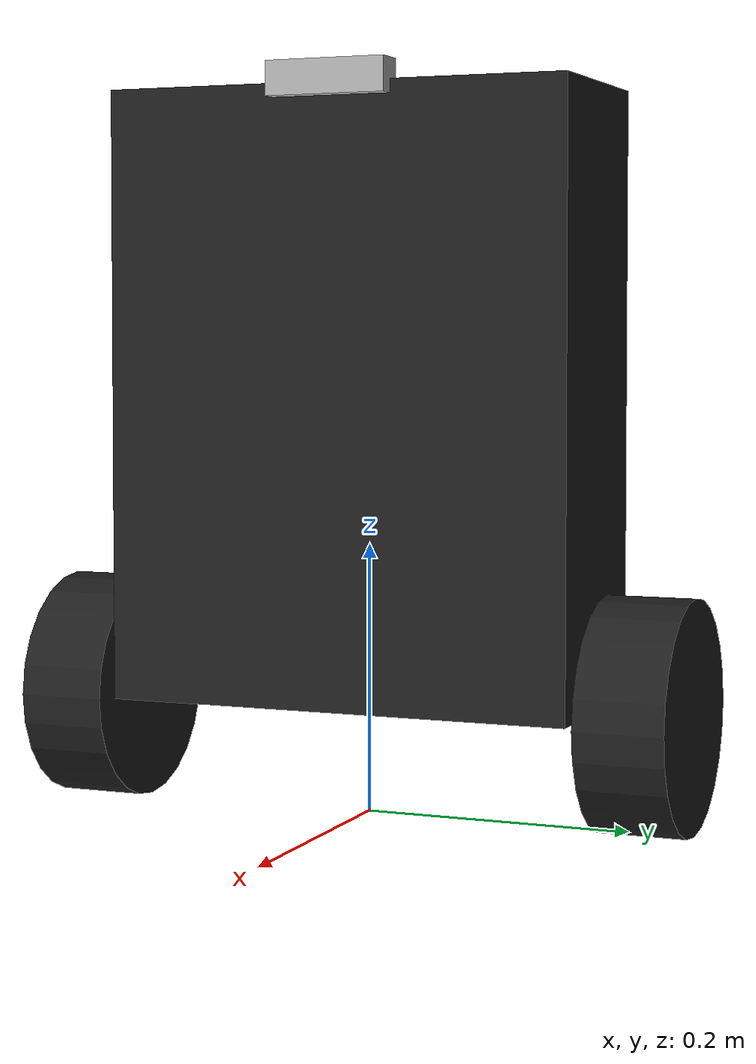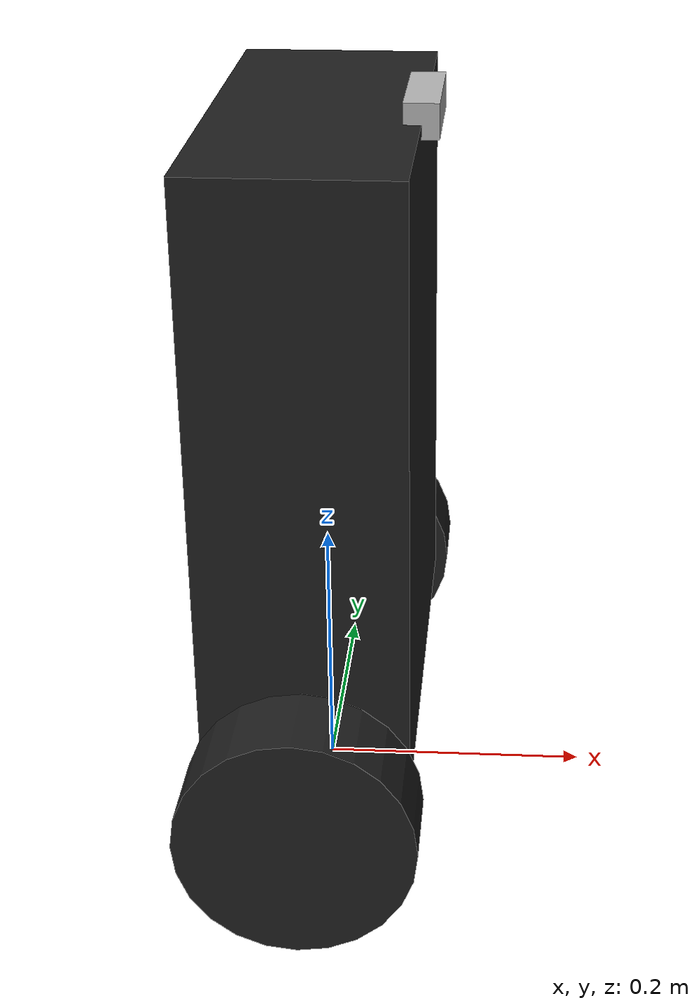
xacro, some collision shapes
<?xml version="1.0"?>

<robot name="balance_robot" xmlns:xacro="http://ros.org/wiki/xacro">
  <xacro:arg name="use_actual_stl_assembly" default="false"/>
  <xacro:property name="stl_assembly_origin_xyz" value="-0.110383 -0.202 0.064314"/>
  <xacro:property name="stl_assembly_origin_rpy" value="0 0 0"/>
  <xacro:property name="stl_assembly_scale" value="0.001 0.001 0.001"/>

  <xacro:include filename="$(find robot_description)/urdf/color_properties.xacro"/>
  <xacro:include filename="$(find robot_description)/urdf/balance_robot_gazebo_depth.xacro"/>
  <xacro:include filename="$(find realsense_ros_gazebo)/xacro/tracker.xacro"/>
  <xacro:include filename="$(find realsense_ros_gazebo)/xacro/depthcam.xacro"/>
  <link name="base_footprint"/>

  <joint name="base_joint" type="fixed">
    <parent link="base_footprint"/>
    <child link="base_link"/>
    <origin xyz="0.0 0.0 0.0" rpy="0 0 0"/>
  </joint>

  <link name="base_link">
    <xacro:if value="$(arg use_actual_stl_assembly)">
      <visual>
        <origin xyz="${stl_assembly_origin_xyz}" rpy="${stl_assembly_origin_rpy}"/>
        <geometry>
          <mesh filename="package://robot_description/stl/body_side.stl" scale="${stl_assembly_scale}"/>
        </geometry>
        <material name="light_black"/>
      </visual>

      <visual>
        <origin xyz="${stl_assembly_origin_xyz}" rpy="${stl_assembly_origin_rpy}"/>
        <geometry>
          <mesh filename="package://robot_description/stl/robot_neck.stl" scale="${stl_assembly_scale}"/>
        </geometry>
        <material name="dark"/>
      </visual>

      <visual>
        <origin xyz="${stl_assembly_origin_xyz}" rpy="${stl_assembly_origin_rpy}"/>
        <geometry>
          <mesh filename="package://robot_description/stl/head_rear.stl" scale="${stl_assembly_scale}"/>
        </geometry>
        <material name="light_black"/>
      </visual>

      <visual>
        <origin xyz="${stl_assembly_origin_xyz}" rpy="${stl_assembly_origin_rpy}"/>
        <geometry>
          <mesh filename="package://robot_description/stl/head_top.stl" scale="${stl_assembly_scale}"/>
        </geometry>
        <material name="dark"/>
      </visual>

      <visual>
        <origin xyz="${stl_assembly_origin_xyz}" rpy="${stl_assembly_origin_rpy}"/>
        <geometry>
          <mesh filename="package://robot_description/stl/gemini335_case.stl" scale="${stl_assembly_scale}"/>
        </geometry>
        <material name="grey"/>
      </visual>
    </xacro:if>

    <xacro:unless value="$(arg use_actual_stl_assembly)">
      <visual>
        <origin xyz="0.0 0.0 0.31" rpy="0 0 0"/>
        <geometry>
          <box size="0.15 0.35 0.45"/>
        </geometry>
        <material name="light_black"/>
      </visual>
    </xacro:unless>

    <collision>
      <origin xyz="0.0 0.0 0.31" rpy="0 0 0"/>
      <geometry>
        <box size="0.15 0.35 0.45"/>
      </geometry>
    </collision>

    <inertial>
      <origin xyz="0 0 0.31" rpy="0 0 0"/>
      <mass value="11.0"/>
      <inertia ixx="0.2979166" ixy="0.0" ixz="0.0"
               iyy="0.20625" iyz="0.0"
               izz="0.1329166" />
    </inertial>
  </link>

  <joint name="wheel_left_joint" type="continuous">
    <parent link="base_link"/>
    <child link="wheel_left_link"/>
    <origin xyz="0.0 0.215 0.085" rpy="1.57 0 0"/>
    <axis xyz="0 0 1"/>
  </joint>

  <link name="wheel_left_link">
    <visual>
      <origin xyz="0 0 0" rpy="0 0 0"/>
      <geometry>
        <cylinder length="0.065" radius="0.085"/>
      </geometry>
      <material name="dark"/>
    </visual>

    <collision>
      <origin xyz="0 0 0" rpy="0 0 0"/>
      <geometry>
        <cylinder length="0.065" radius="0.085"/>
      </geometry>
    </collision>

    <inertial>
      <origin xyz="0 0 0" />
      <mass value="3" />
      <inertia ixx="0.0108375" ixy="0.0" ixz="0.0"
               iyy="0.006475" iyz="0.0"
               izz="0.006475" />
      </inertial>
  </link>

  <joint name="wheel_right_joint" type="continuous">
    <parent link="base_link"/>
    <child link="wheel_right_link"/>
    <origin xyz="0.0 -0.215 0.085" rpy="1.57 0 0"/>
    <axis xyz="0 0 1"/>
  </joint>

  <link name="wheel_right_link">
    <visual>
      <origin xyz="0 0 0" rpy="0 0 0"/>
      <geometry>
        <cylinder length="0.065" radius="0.085"/>
      </geometry>
      <material name="dark"/>
    </visual>

    <collision>
      <origin xyz="0 0 0" rpy="0 0 0"/>
      <geometry>
        <cylinder length="0.065" radius="0.085"/>
      </geometry>
    </collision>

    <inertial>
      <origin xyz="0 0 0" />
      <mass value="3"/>
      <inertia ixx="0.0108375" ixy="0.0" ixz="0.0"
               iyy="0.006475" iyz="0.0"
               izz="0.006475" />
      </inertial>
  </link>

  <joint name="imu_joint" type="fixed">
    <parent link="base_link"/>
    <child link="imu_link"/>
    <origin xyz="0 0 0.535" rpy="0 0 0"/>
  </joint>

  <link name="imu_link"/>

  <joint name="scan_joint" type="fixed">
    <parent link="base_link"/>
    <child link="camera_link"/>
    <origin xyz="0.075 0.0 0.525" rpy="0 0 0"/>
  </joint>

  <link name="camera_link">  </link>

   <xacro:realsense_d435 sensor_name="d435" parent_link="camera_link" rate="50">
    <origin rpy="0 0 0 " xyz="0 0 0.0"/>
  </xacro:realsense_d435>
</robot>

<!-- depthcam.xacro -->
<robot xmlns:xacro="http://www.ros.org/wiki/xacro">

  <xacro:include filename="$(find realsense_ros_gazebo)/xacro/inertia_calc.xacro"/>

  <!-- INTEL REALSENSE D435 -->

  <xacro:macro name="realsense_d435" params="sensor_name parent_link *origin rate">

    <xacro:property name="d435_cam_depth_to_left_ir_offset" value="0.0"/>
    <xacro:property name="d435_cam_depth_to_right_ir_offset" value="-0.050"/>
    <xacro:property name="d435_cam_depth_to_color_offset" value="0.015"/>
    <xacro:property name="d435_cam_width" value="0.090"/>
    <xacro:property name="d435_cam_height" value="0.025"/>
    <xacro:property name="d435_cam_depth" value="0.02505"/>
    <xacro:property name="d435_cam_mass" value="0.564"/>
    <xacro:property name="d435_cam_mount_from_center_offset" value="0.0149"/>
    <xacro:property name="d435_cam_depth_px" value="${d435_cam_mount_from_center_offset}"/>
    <xacro:property name="d435_cam_depth_py" value="0.0175"/>
    <xacro:property name="d435_cam_depth_pz" value="${d435_cam_height/2}"/>

    <!-- camera body, with origin at bottom screw mount -->
    <joint name="${sensor_name}_joint" type="fixed">
      <xacro:insert_block name="origin" />
      <parent link="${parent_link}"/>
      <child link="${sensor_name}_bottom_screw_frame" />
    </joint>
    <link name="${sensor_name}_bottom_screw_frame"/>

    <joint name="${sensor_name}_link_joint" type="fixed">
      <origin xyz="0 ${d435_cam_depth_py} ${d435_cam_depth_pz}" rpy="0 0 0"/>
      <parent link="${sensor_name}_bottom_screw_frame"/>
      <child link="${sensor_name}_link" />
    </joint>

    <link name="${sensor_name}_link">
      <visual>
        <origin xyz="${d435_cam_mount_from_center_offset} ${-d435_cam_depth_py} 0" rpy="${pi/2} 0 ${pi/2}"/>
        <geometry>
          <mesh filename="package://realsense_ros_gazebo/meshes/realsense_d435.stl" />
        </geometry>
      </visual>
      <collision>
        <origin xyz="0 ${-d435_cam_depth_py} 0" rpy="0 0 0"/>
        <geometry>
          <box size="${d435_cam_depth} ${d435_cam_width} ${d435_cam_height}"/>
        </geometry>
      </collision>
      <inertial>
        <mass value="${d435_cam_mass}" />
        <origin xyz="0 ${-d435_cam_depth_py} 0" rpy="0 0 0"/>
        <xacro:box_inertia m="${d435_cam_mass}" x="${d435_cam_depth}" y="${d435_cam_width}" z="${d435_cam_height}"/>
      </inertial>
    </link>

    <!-- camera depth joints and links -->
    <joint name="${sensor_name}_depth_joint" type="fixed">
      <origin xyz="0 0 0" rpy="0 0 0"/>
      <parent link="${sensor_name}_link"/>
      <child link="${sensor_name}_depth_frame" />
    </joint>
    <link name="${sensor_name}_depth_frame"/>

    <joint name="${sensor_name}_depth_optical_joint" type="fixed">
      <origin xyz="0 0 0" rpy="${-pi/2} 0 ${-pi/2}" />
      <parent link="${sensor_name}_depth_frame" />
      <child link="${sensor_name}_depth_optical_frame" />
    </joint>
    <link name="${sensor_name}_depth_optical_frame"/>

    <!-- camera left IR joints and links -->
    <joint name="${sensor_name}_left_ir_joint" type="fixed">
      <origin xyz="0 ${d435_cam_depth_to_left_ir_offset} 0" rpy="0 0 0" />
      <parent link="${sensor_name}_depth_frame" />
      <child link="${sensor_name}_left_ir_frame" />
    </joint>
    <link name="${sensor_name}_left_ir_frame"/>

    <joint name="${sensor_name}_left_ir_optical_joint" type="fixed">
      <origin xyz="0 0 0" rpy="${-pi/2} 0 ${-pi/2}" />
      <parent link="${sensor_name}_left_ir_frame" />
      <child link="${sensor_name}_left_ir_optical_frame" />
    </joint>
    <link name="${sensor_name}_left_ir_optical_frame"/>

    <!-- camera right IR joints and links -->
    <joint name="${sensor_name}_right_ir_joint" type="fixed">
      <origin xyz="0 ${d435_cam_depth_to_right_ir_offset} 0" rpy="0 0 0" />
      <parent link="${sensor_name}_depth_frame" />
      <child link="${sensor_name}_right_ir_frame" />
    </joint>
    <link name="${sensor_name}_right_ir_frame"/>

    <joint name="${sensor_name}_right_ir_optical_joint" type="fixed">
      <origin xyz="0 0 0" rpy="${-pi/2} 0 ${-pi/2}" />
      <parent link="${sensor_name}_right_ir_frame" />
      <child link="${sensor_name}_right_ir_optical_frame" />
    </joint>
    <link name="${sensor_name}_right_ir_optical_frame"/>

    <!-- camera color joints and links -->
    <joint name="${sensor_name}_color_joint" type="fixed">
      <origin xyz="0 ${d435_cam_depth_to_color_offset} 0" rpy="0 0 0" />
      <parent link="${sensor_name}_depth_frame" />
      <child link="${sensor_name}_color_frame" />
    </joint>
    <link name="${sensor_name}_color_frame"/>

    <joint name="${sensor_name}_color_optical_joint" type="fixed">
      <origin xyz="0 0 0" rpy="${-pi/2} 0 ${-pi/2}" />
      <parent link="${sensor_name}_color_frame" />
      <child link="${sensor_name}_color_optical_frame" />
    </joint>
    <link name="${sensor_name}_color_optical_frame"/>

    <!-- gazebo plugin -->

    <xacro:property name="deg_to_rad" value="0.01745329251994329577" />

    <gazebo reference="${sensor_name}_link">
      <self_collide>0</self_collide>
      <enable_wind>0</enable_wind>
      <kinematic>0</kinematic>
      <gravity>1</gravity>
      <mu2>1</mu2>
      <fdir1>0 0 0</fdir1>
      <kp>1e+13</kp>
      <kd>1</kd>

      <sensor name="${sensor_name}_color" type="camera">
        <camera name="${sensor_name}">
          <horizontal_fov>${69.4*deg_to_rad}</horizontal_fov>
          <image>
            <width>640</width>
            <height>480</height>
            <format>RGB_INT8</format>
          </image>
          <clip>
            <near>0.1</near>
            <far>100</far>
          </clip>
          <noise>
            <type>gaussian</type>
            <mean>0.0</mean>
            <stddev>0.007</stddev>
          </noise>
        </camera>
        <always_on>1</always_on>
        <update_rate>30</update_rate>
        <visualize>1</visualize>
      </sensor>
      <sensor name="${sensor_name}_ired1" type="camera">
        <camera name="${sensor_name}">
          <horizontal_fov>${85.2*deg_to_rad}</horizontal_fov>
          <image>
            <width>1280</width>
            <height>720</height>
            <format>L_INT8</format>
          </image>
          <clip>
            <near>0.1</near>
            <far>100</far>
          </clip>
          <noise>
            <type>gaussian</type>
            <mean>0.0</mean>
            <stddev>0.05</stddev>
          </noise>
        </camera>
        <always_on>1</always_on>
        <update_rate>90</update_rate>
        <visualize>0</visualize>
      </sensor>
      <sensor name="${sensor_name}_ired2" type="camera">
        <camera name="${sensor_name}">
          <horizontal_fov>${85.2*deg_to_rad}</horizontal_fov>
          <image>
            <width>1280</width>
            <height>720</height>
            <format>L_INT8</format>
          </image>
          <clip>
            <near>0.1</near>
            <far>100</far>
          </clip>
          <noise>
            <type>gaussian</type>
            <mean>0.0</mean>
            <stddev>0.05</stddev>
          </noise>
        </camera>
        <always_on>1</always_on>
        <update_rate>90</update_rate>
        <visualize>0</visualize>
      </sensor>
      <sensor name="${sensor_name}_depth" type="depth">
        <camera name="${sensor_name}">
          <horizontal_fov>${58*deg_to_rad}</horizontal_fov>
          <image>
            <width>64</width>
            <height>64</height>
          </image>
          <clip>
            <near>0.1</near>
            <far>10</far>
          </clip>
          <noise>
            <type>gaussian</type>
            <mean>0.0</mean>
            <stddev>0.100</stddev>
          </noise>
        </camera>
        <always_on>1</always_on>
        <update_rate>15</update_rate>
        <visualize>0</visualize>
      </sensor>
    </gazebo>

    <gazebo>
      <plugin name="${sensor_name}" filename="librealsense_gazebo_plugin.so">
        <prefix>${sensor_name}_</prefix>
        <depthUpdateRate>${rate}</depthUpdateRate>
        <colorUpdateRate>${rate}</colorUpdateRate>
        <infraredUpdateRate>${rate}</infraredUpdateRate>
        <depthTopicName>depth/image_raw</depthTopicName>
        <depthCameraInfoTopicName>depth/camera_info</depthCameraInfoTopicName>
        <colorTopicName>color/image_raw</colorTopicName>
        <colorCameraInfoTopicName>color/camera_info</colorCameraInfoTopicName>
        <infrared1TopicName>infra1/image_raw</infrared1TopicName>
        <infrared1CameraInfoTopicName>infra1/camera_info</infrared1CameraInfoTopicName>
        <infrared2TopicName>infra2/image_raw</infrared2TopicName>
        <infrared2CameraInfoTopicName>infra2/camera_info</infrared2CameraInfoTopicName>
        <colorOpticalframeName>${sensor_name}_color_optical_frame</colorOpticalframeName>
        <depthOpticalframeName>${sensor_name}_depth_optical_frame</depthOpticalframeName>
        <infrared1OpticalframeName>${sensor_name}_infrared1_optical_frame</infrared1OpticalframeName>
        <infrared2OpticalframeName>${sensor_name}_infrared2_optical_frame</infrared2OpticalframeName>
        <rangeMinDepth>0.2</rangeMinDepth>
        <rangeMaxDepth>10.0</rangeMaxDepth>
        <pointCloud>false</pointCloud>
        <pointCloudTopicName>depth/color/points</pointCloudTopicName>
        <pointCloudCutoff>0.25</pointCloudCutoff>
        <pointCloudCutoffMax>9.0</pointCloudCutoffMax>
      </plugin>
    </gazebo>

  </xacro:macro>

  <!-- INTEL REALSENSE R200 -->

  <xacro:macro name="realsense_R200" params="sensor_name parent_link rate *origin">

      <link name="${sensor_name}_R200_camera">
          <visual>
              <origin rpy="0 0 0" xyz="0 0 0"/>
              <geometry>
                  <mesh filename="package://realsense_ros_gazebo/meshes/realsense_r200/meshes/realsense.dae"/>
              </geometry>
          </visual>
          <collision>
              <geometry>
                  <box size="0.0078 0.130 0.0192"/>
              </geometry>
          </collision>
          <inertial>
              <mass value="0.0615752"/>
              <origin rpy="0 0 0" xyz="0 0 0"/>
              <inertia ixx="9.108e-05"
                       ixy="0"
                       ixz="0"
                       iyy="2.51e-06"
                       iyz="0"
                       izz="8.931e-05"/>
          </inertial>
      </link>

      <joint name="${sensor_name}_joint" type="fixed">
          <parent link="${parent_link}"/>
          <child link="${sensor_name}_R200_camera"/>
          <xacro:insert_block name="origin"/>
      </joint>

      <link name="${sensor_name}_color" />
      <link name="${sensor_name}_depth" />
      <link name="${sensor_name}_ired1" />
      <link name="${sensor_name}_ired2" />

      <joint name="${sensor_name}_color_joint" type="fixed">
          <parent link="${sensor_name}_R200_camera" />
          <child link="${sensor_name}_color" />
          <origin xyz="0 -0.046 0.004" rpy="${pi/2} ${pi} ${pi/2}"/>
      </joint>

      <joint name="${sensor_name}_depth_joint" type="fixed">
          <parent link="${sensor_name}_R200_camera" />
          <child link="${sensor_name}_depth" />
          <origin xyz="0 -0.03 0.004" rpy="0 0 0"/>
      </joint>

      <joint name="${sensor_name}_ired1_joint" type="fixed">
          <parent link="${sensor_name}_R200_camera" />
          <child link="${sensor_name}_ired1" />
          <origin xyz="0 -0.06 0.004" rpy="0 0 0"/>
      </joint>

      <joint name="${sensor_name}_ired2_joint" type="fixed">
          <parent link="${sensor_name}_R200_camera" />
          <child link="${sensor_name}_ired2" />
          <origin xyz="0 0.01 0.004" rpy="0 0 0"/>
      </joint>

      <gazebo reference="${sensor_name}_R200_camera">

          <self_collide>0</self_collide>
          <enable_wind>0</enable_wind>
          <kinematic>0</kinematic>
          <gravity>1</gravity>
          <mu>1</mu>
          <mu2>1</mu2>
          <fdir1>0 0 0</fdir1>
          <slip1>0</slip1>
          <slip2>0</slip2>
          <kp>1e+13</kp>
          <kd>1</kd>
          <max_vel>0.01</max_vel>
          <min_depth>0</min_depth>

          <sensor name="${sensor_name}_color" type="camera">
              <pose frame="">0 -0.046 0.004 0 0 0</pose>
              <camera name="${sensor_name}_R200_camera">
              <horizontal_fov>1.047</horizontal_fov>
              <image>
                  <width>640</width>
                  <height>480</height>
                  <format>RGB_INT8</format>
              </image>
              <clip>
                  <near>0.1</near>
                  <far>100</far>
              </clip>
              <noise>
                  <type>gaussian</type>
                  <mean>0.0</mean>
                  <stddev>0.007</stddev>
              </noise>
              </camera>
              <always_on>1</always_on>
              <update_rate>${rate}</update_rate>
              <visualize>1</visualize>
          </sensor>
          <sensor name="${sensor_name}_ired1" type="camera">
              <pose frame="">0 -0.06 0.004 0 0 0</pose>
              <camera name="${sensor_name}_R200_camera">
              <horizontal_fov>1.047</horizontal_fov>
              <image>
                  <width>640</width>
                  <height>480</height>
                  <format>L_INT8</format>
              </image>
              <clip>
                  <near>0.1</near>
                  <far>100</far>
              </clip>
              <noise>
                  <type>gaussian</type>
                  <mean>0.0</mean>
                  <stddev>0.05</stddev>
              </noise>
              </camera>
              <always_on>1</always_on>
              <update_rate>${rate}</update_rate>
              <visualize>0</visualize>
          </sensor>
          <sensor name="${sensor_name}_ired2" type="camera">
              <pose frame="">0 0.01 0.004 0 0 0</pose>
              <camera name="${sensor_name}_R200_camera">
              <horizontal_fov>1.047</horizontal_fov>
              <image>
                  <width>640</width>
                  <height>480</height>
                  <format>L_INT8</format>
              </image>
              <clip>
                  <near>0.1</near>
                  <far>100</far>
              </clip>
              <noise>
                  <type>gaussian</type>
                  <mean>0.0</mean>
                  <stddev>0.05</stddev>
              </noise>
              </camera>
              <always_on>1</always_on>
              <update_rate>${rate}</update_rate>
              <visualize>0</visualize>
          </sensor>
          <sensor name="${sensor_name}_depth" type="depth">
              <pose frame="">0 -0.03 0.004 0 0 0</pose>
              <camera name="${sensor_name}_R200_camera">
              <horizontal_fov>1.047</horizontal_fov>
              <image>
                      <width>640</width>
                      <height>480</height>
              </image>
              <clip>
                      <near>0.1</near>
                      <far>100</far>
              </clip>
              <noise>
                      <type>gaussian</type>
                      <mean>0.0</mean>
                      <stddev>0.100</stddev>
              </noise>
              </camera>
              <always_on>1</always_on>
              <update_rate>60</update_rate>
              <visualize>0</visualize>
          </sensor>
      </gazebo>

      <gazebo>
        <plugin name="${sensor_name}" filename="librealsense_gazebo_plugin.so">
          <prefix>${sensor_name}_</prefix>
          <depthUpdateRate>${rate}</depthUpdateRate>
          <colorUpdateRate>${rate}</colorUpdateRate>
          <infraredUpdateRate>${rate}</infraredUpdateRate>
          <depthTopicName>depth/image_raw</depthTopicName>
          <depthCameraInfoTopicName>depth/camera_info</depthCameraInfoTopicName>
          <colorTopicName>color/image_raw</colorTopicName>
          <colorCameraInfoTopicName>color/camera_info</colorCameraInfoTopicName>
          <infrared1TopicName>infra1/image_raw</infrared1TopicName>
          <infrared1CameraInfoTopicName>infra1/camera_info</infrared1CameraInfoTopicName>
          <infrared2TopicName>infra2/image_raw</infrared2TopicName>
          <infrared2CameraInfoTopicName>infra2/camera_info</infrared2CameraInfoTopicName>
          <colorOpticalframeName>${sensor_name}_color_optical_frame</colorOpticalframeName>
          <depthOpticalframeName>${sensor_name}_depth_optical_frame</depthOpticalframeName>
          <infrared1OpticalframeName>${sensor_name}_infrared1_optical_frame</infrared1OpticalframeName>
          <infrared2OpticalframeName>${sensor_name}_infrared2_optical_frame</infrared2OpticalframeName>
          <rangeMinDepth>0.2</rangeMinDepth>
          <rangeMaxDepth>10.0</rangeMaxDepth>
          <pointCloud>false</pointCloud>
          <pointCloudTopicName>depth/color/points</pointCloudTopicName>
          <pointCloudCutoff>0.25</pointCloudCutoff>
          <pointCloudCutoffMax>9.0</pointCloudCutoffMax>
        </plugin>
      </gazebo>

  </xacro:macro>

</robot>
